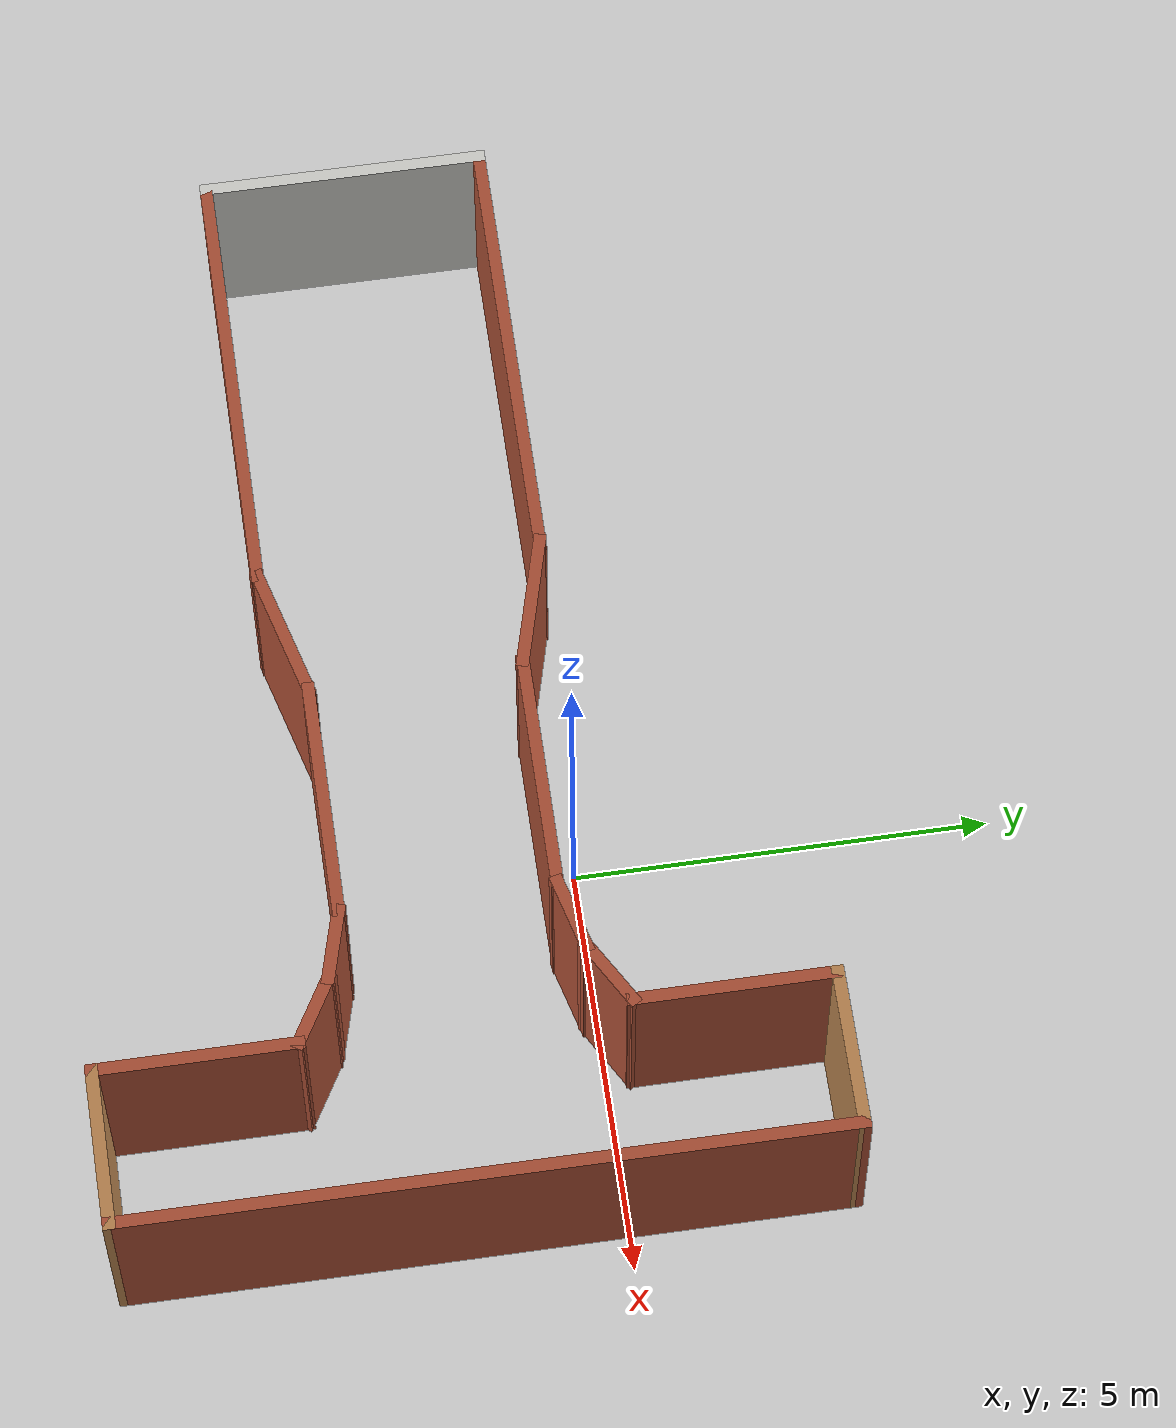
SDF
<sdf version="1.4">
  <world name="default">

    <scene>
      <ambient>0.4 0.4 0.4 1</ambient>
      <background>0.7 0.7 0.7 1</background>
      <shadows>true</shadows>
    </scene>

    <!-- A global light source -->
    <include>
      <uri>model://sun</uri>
    </include>

    <!-- A ground plane -->
    <include>
      <uri>model://ground_plane</uri>
    </include>

    <!-- My Maze -->
    <include>
      <uri>model://maze_3</uri>
	<pose>-2.05 -1.60 0 0 0 0</pose>
    </include>

    <physics type="ode">
      <real_time_update_rate>1000.0</real_time_update_rate>
      <max_step_size>0.001</max_step_size>
      <real_time_factor>1</real_time_factor>
      <ode>
        <solver>
          <type>quick</type>
          <iters>150</iters>
          <precon_iters>0</precon_iters>
          <sor>1.400000</sor>
          <use_dynamic_moi_rescaling>1</use_dynamic_moi_rescaling>
        </solver>
        <constraints>
          <cfm>0.00001</cfm>
          <erp>0.2</erp>
          <contact_max_correcting_vel>2000.000000</contact_max_correcting_vel>
          <contact_surface_layer>0.01000</contact_surface_layer>
        </constraints>
      </ode>
    </physics>
  </world>

</sdf>

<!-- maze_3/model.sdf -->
<sdf version='1.5'>
  <model name='maze_3'>
    <pose frame=''>3.84212 -3.565 0 0 -0 0</pose>
    <link name='Wall_0'>
      <collision name='Wall_0_Collision'>
        <geometry>
          <box>
            <size>3.5 0.15 2.5</size>
          </box>
        </geometry>
        <pose frame=''>0 0 1.25 0 -0 0</pose>
      </collision>
      <visual name='Wall_0_Visual'>
        <pose frame=''>0 0 1.25 0 -0 0</pose>
        <geometry>
          <box>
            <size>3.5 0.15 2.5</size>
          </box>
        </geometry>
        <material>
          <script>
            <uri>file://media/materials/scripts/gazebo.material</uri>
            <name>Gazebo/CeilingTiled</name>
          </script>
          <ambient>1 1 1 1</ambient>
        </material>
      </visual>
      <pose frame=''>-6.58212 0 0 0 0 -1.5708</pose>
    </link>
    <link name='Wall_1'>
      <collision name='Wall_1_Collision'>
        <geometry>
          <box>
            <size>5.5 0.15 2.5</size>
          </box>
        </geometry>
        <pose frame=''>0 0 1.25 0 -0 0</pose>
      </collision>
      <visual name='Wall_1_Visual'>
        <pose frame=''>0 0 1.25 0 -0 0</pose>
        <geometry>
          <box>
            <size>5.5 0.15 2.5</size>
          </box>
        </geometry>
        <material>
          <script>
            <uri>file://media/materials/scripts/gazebo.material</uri>
            <name>Gazebo/Bricks</name>
          </script>
          <ambient>1 1 1 1</ambient>
        </material>
      </visual>
      <pose frame=''>-3.90712 -1.675 0 0 -0 0</pose>
    </link>
    <link name='Wall_11'>
      <collision name='Wall_11_Collision'>
        <geometry>
          <box>
            <size>1 0.15 2.5</size>
          </box>
        </geometry>
        <pose frame=''>0 0 1.25 0 -0 0</pose>
      </collision>
      <visual name='Wall_11_Visual'>
        <pose frame=''>0 0 1.25 0 -0 0</pose>
        <geometry>
          <box>
            <size>1 0.15 2.5</size>
          </box>
        </geometry>
        <material>
          <script>
            <uri>file://media/materials/scripts/gazebo.material</uri>
            <name>Gazebo/Bricks</name>
          </script>
          <ambient>1 1 1 1</ambient>
        </material>
      </visual>
      <pose frame=''>3.57388 -1.37089 0 0 0 -0.261799</pose>
    </link>
    <link name='Wall_12'>
      <collision name='Wall_12_Collision'>
        <geometry>
          <box>
            <size>1 0.15 2.5</size>
          </box>
        </geometry>
        <pose frame=''>0 0 1.25 0 -0 0</pose>
      </collision>
      <visual name='Wall_12_Visual'>
        <pose frame=''>0 0 1.25 0 -0 0</pose>
        <geometry>
          <box>
            <size>1 0.15 2.5</size>
          </box>
        </geometry>
        <material>
          <script>
            <uri>file://media/materials/scripts/gazebo.material</uri>
            <name>Gazebo/Bricks</name>
          </script>
          <ambient>1 1 1 1</ambient>
        </material>
      </visual>
      <pose frame=''>4.35246 -1.69339 0 0 0 -0.523599</pose>
    </link>
    <link name='Wall_13'>
      <collision name='Wall_13_Collision'>
        <geometry>
          <box>
            <size>2.5 0.15 2.5</size>
          </box>
        </geometry>
        <pose frame=''>0 0 1.25 0 -0 0</pose>
      </collision>
      <visual name='Wall_13_Visual'>
        <pose frame=''>0 0 1.25 0 -0 0</pose>
        <geometry>
          <box>
            <size>2.5 0.15 2.5</size>
          </box>
        </geometry>
        <material>
          <script>
            <uri>file://media/materials/scripts/gazebo.material</uri>
            <name>Gazebo/Bricks</name>
          </script>
          <ambient>1 1 1 1</ambient>
        </material>
      </visual>
      <pose frame=''>4.72052 -3.08089 0 0 0 -1.5708</pose>
    </link>
    <link name='Wall_14'>
      <collision name='Wall_14_Collision'>
        <geometry>
          <box>
            <size>2 0.15 2.5</size>
          </box>
        </geometry>
        <pose frame=''>0 0 1.25 0 -0 0</pose>
      </collision>
      <visual name='Wall_14_Visual'>
        <pose frame=''>0 0 1.25 0 -0 0</pose>
        <geometry>
          <box>
            <size>2 0.15 2.5</size>
          </box>
        </geometry>
        <material>
          <script>
            <uri>file://media/materials/scripts/gazebo.material</uri>
            <name>Gazebo/Wood</name>
          </script>
          <ambient>1 1 1 1</ambient>
        </material>
      </visual>
      <pose frame=''>5.64552 -4.25589 0 0 -0 0</pose>
    </link>
    <link name='Wall_17'>
      <collision name='Wall_17_Collision'>
        <geometry>
          <box>
            <size>1.02224 0.15 2.5</size>
          </box>
        </geometry>
        <pose frame=''>0 0 1.25 0 -0 0</pose>
      </collision>
      <visual name='Wall_17_Visual'>
        <pose frame=''>0 0 1.25 0 -0 0</pose>
        <geometry>
          <box>
            <size>1.02224 0.15 2.5</size>
          </box>
        </geometry>
        <material>
          <script>
            <uri>file://media/materials/scripts/gazebo.material</uri>
            <name>Gazebo/Bricks</name>
          </script>
          <ambient>1 1 1 1</ambient>
        </material>
      </visual>
      <pose frame=''>3.58538 1.37089 0 0 -0 0.254975</pose>
    </link>
    <link name='Wall_18'>
      <collision name='Wall_18_Collision'>
        <geometry>
          <box>
            <size>1 0.15 2.5</size>
          </box>
        </geometry>
        <pose frame=''>0 0 1.25 0 -0 0</pose>
      </collision>
      <visual name='Wall_18_Visual'>
        <pose frame=''>0 0 1.25 0 -0 0</pose>
        <geometry>
          <box>
            <size>1 0.15 2.5</size>
          </box>
        </geometry>
        <material>
          <script>
            <uri>file://media/materials/scripts/gazebo.material</uri>
            <name>Gazebo/Bricks</name>
          </script>
          <ambient>1 1 1 1</ambient>
        </material>
      </visual>
      <pose frame=''>4.36396 1.69339 0 0 -0 0.523599</pose>
    </link>
    <link name='Wall_19'>
      <collision name='Wall_19_Collision'>
        <geometry>
          <box>
            <size>2.5 0.15 2.5</size>
          </box>
        </geometry>
        <pose frame=''>0 0 1.25 0 -0 0</pose>
      </collision>
      <visual name='Wall_19_Visual'>
        <pose frame=''>0 0 1.25 0 -0 0</pose>
        <geometry>
          <box>
            <size>2.5 0.15 2.5</size>
          </box>
        </geometry>
        <material>
          <script>
            <uri>file://media/materials/scripts/gazebo.material</uri>
            <name>Gazebo/Bricks</name>
          </script>
          <ambient>1 1 1 1</ambient>
        </material>
      </visual>
      <pose frame=''>4.73202 3.08089 0 0 -0 1.5708</pose>
    </link>
    <link name='Wall_2'>
      <collision name='Wall_2_Collision'>
        <geometry>
          <box>
            <size>1.75 0.15 2.5</size>
          </box>
        </geometry>
        <pose frame=''>0 0 1.25 0 -0 0</pose>
      </collision>
      <visual name='Wall_2_Visual'>
        <pose frame=''>0 0 1.25 0 -0 0</pose>
        <geometry>
          <box>
            <size>1.75 0.15 2.5</size>
          </box>
        </geometry>
        <material>
          <script>
            <uri>file://media/materials/scripts/gazebo.material</uri>
            <name>Gazebo/Bricks</name>
          </script>
          <ambient>1 1 1 1</ambient>
        </material>
      </visual>
      <pose frame=''>-0.45938 -1.46795 0 0 -0 0.261799</pose>
    </link>
    <link name='Wall_20'>
      <collision name='Wall_20_Collision'>
        <geometry>
          <box>
            <size>2 0.15 2.5</size>
          </box>
        </geometry>
        <pose frame=''>0 0 1.25 0 -0 0</pose>
      </collision>
      <visual name='Wall_20_Visual'>
        <pose frame=''>0 0 1.25 0 -0 0</pose>
        <geometry>
          <box>
            <size>2 0.15 2.5</size>
          </box>
        </geometry>
        <material>
          <script>
            <uri>file://media/materials/scripts/gazebo.material</uri>
            <name>Gazebo/Wood</name>
          </script>
          <ambient>1 1 1 1</ambient>
        </material>
      </visual>
      <pose frame=''>5.65702 4.25589 0 0 -0 0</pose>
    </link>
    <link name='Wall_29'>
      <collision name='Wall_29_Collision'>
        <geometry>
          <box>
            <size>8.66178 0.15 2.5</size>
          </box>
        </geometry>
        <pose frame=''>0 0 1.25 0 -0 0</pose>
      </collision>
      <visual name='Wall_29_Visual'>
        <pose frame=''>0 0 1.25 0 -0 0</pose>
        <geometry>
          <box>
            <size>8.66178 0.15 2.5</size>
          </box>
        </geometry>
        <material>
          <script>
            <uri>file://media/materials/scripts/gazebo.material</uri>
            <name>Gazebo/Bricks</name>
          </script>
          <ambient>1 1 1 1</ambient>
        </material>
      </visual>
      <pose frame=''>6.57627 0 0 0 -0 1.56944</pose>
    </link>
    <link name='Wall_4'>
      <collision name='Wall_4_Collision'>
        <geometry>
          <box>
            <size>5.5 0.15 2.5</size>
          </box>
        </geometry>
        <pose frame=''>0 0 1.25 0 -0 0</pose>
      </collision>
      <visual name='Wall_4_Visual'>
        <pose frame=''>0 0 1.25 0 -0 0</pose>
        <geometry>
          <box>
            <size>5.5 0.15 2.5</size>
          </box>
        </geometry>
        <material>
          <script>
            <uri>file://media/materials/scripts/gazebo.material</uri>
            <name>Gazebo/Bricks</name>
          </script>
          <ambient>1 1 1 1</ambient>
        </material>
      </visual>
      <pose frame=''>-3.90712 1.675 0 0 -0 0</pose>
    </link>
    <link name='Wall_5'>
      <collision name='Wall_5_Collision'>
        <geometry>
          <box>
            <size>1.75 0.15 2.5</size>
          </box>
        </geometry>
        <pose frame=''>0 0 1.25 0 -0 0</pose>
      </collision>
      <visual name='Wall_5_Visual'>
        <pose frame=''>0 0 1.25 0 -0 0</pose>
        <geometry>
          <box>
            <size>1.75 0.15 2.5</size>
          </box>
        </geometry>
        <material>
          <script>
            <uri>file://media/materials/scripts/gazebo.material</uri>
            <name>Gazebo/Bricks</name>
          </script>
          <ambient>1 1 1 1</ambient>
        </material>
      </visual>
      <pose frame=''>-0.45938 1.46795 0 0 0 -0.261799</pose>
    </link>
    <link name='Wall_6'>
      <collision name='Wall_6_Collision'>
        <geometry>
          <box>
            <size>3 0.15 2.5</size>
          </box>
        </geometry>
        <pose frame=''>0 0 1.25 0 -0 0</pose>
      </collision>
      <visual name='Wall_6_Visual'>
        <pose frame=''>0 0 1.25 0 -0 0</pose>
        <geometry>
          <box>
            <size>3 0.15 2.5</size>
          </box>
        </geometry>
        <material>
          <script>
            <uri>file://media/materials/scripts/gazebo.material</uri>
            <name>Gazebo/Bricks</name>
          </script>
          <ambient>1 1 1 1</ambient>
        </material>
      </visual>
      <pose frame=''>1.73836 1.26089 0 0 -0 0</pose>
    </link>
    <link name='Wall_8'>
      <collision name='Wall_8_Collision'>
        <geometry>
          <box>
            <size>3 0.15 2.5</size>
          </box>
        </geometry>
        <pose frame=''>0 0 1.25 0 -0 0</pose>
      </collision>
      <visual name='Wall_8_Visual'>
        <pose frame=''>0 0 1.25 0 -0 0</pose>
        <geometry>
          <box>
            <size>3 0.15 2.5</size>
          </box>
        </geometry>
        <material>
          <script>
            <uri>file://media/materials/scripts/gazebo.material</uri>
            <name>Gazebo/Bricks</name>
          </script>
          <ambient>1 1 1 1</ambient>
        </material>
      </visual>
      <pose frame=''>1.73836 -1.26089 0 0 -0 0</pose>
    </link>
    <static>1</static>
  </model>
</sdf>
